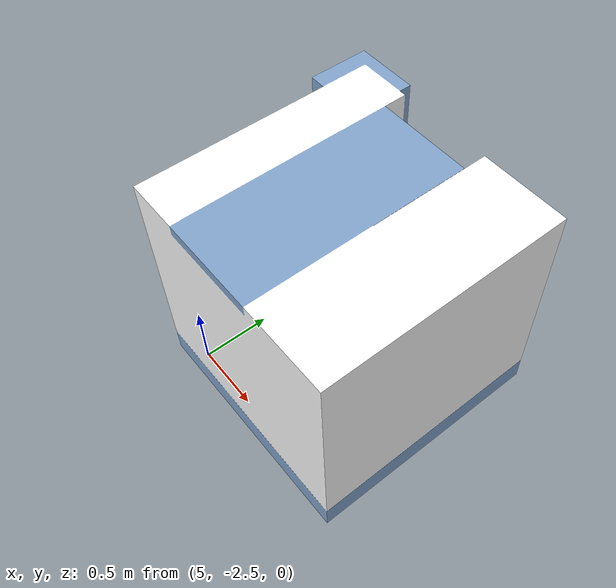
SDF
<?xml version='1.0'?>
<sdf version='1.4'>
  <model name="leadwell">
    <static>true</static>
    <link name='base_link'>
      <pose>0 0 0 0 0 0</pose>
      <collision name='collision'>
        <geometry>
          <mesh>
            <uri>model://leadwell/meshes/centromecan.dae</uri>
          </mesh>
        </geometry>
      </collision>
      <visual name='visual'>
        <geometry>
          <mesh>
            <uri>model://leadwell/meshes/centromecan.dae</uri>
          </mesh>
        </geometry>
      </visual>
    </link>
  </model>
</sdf>
